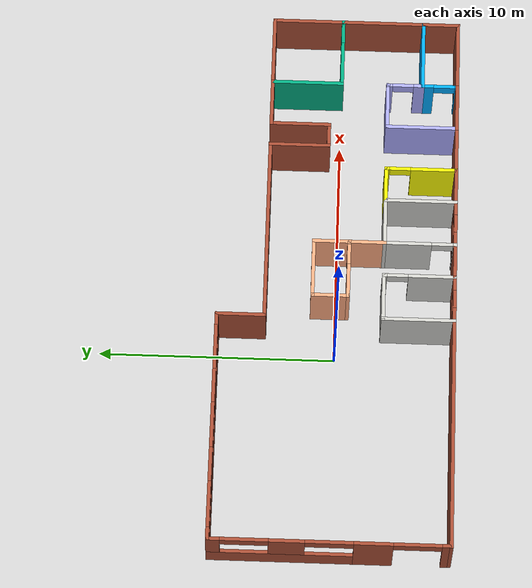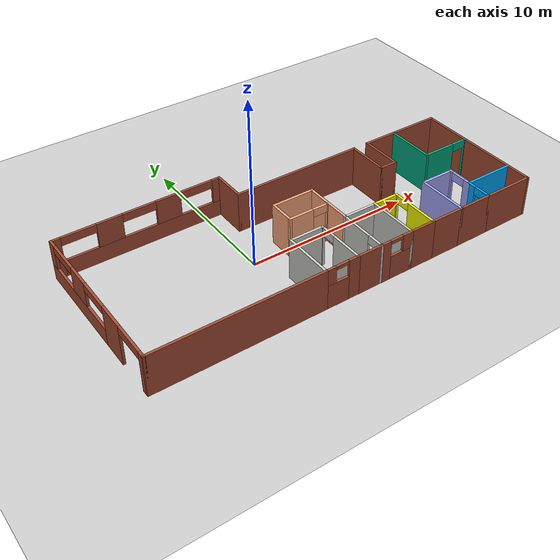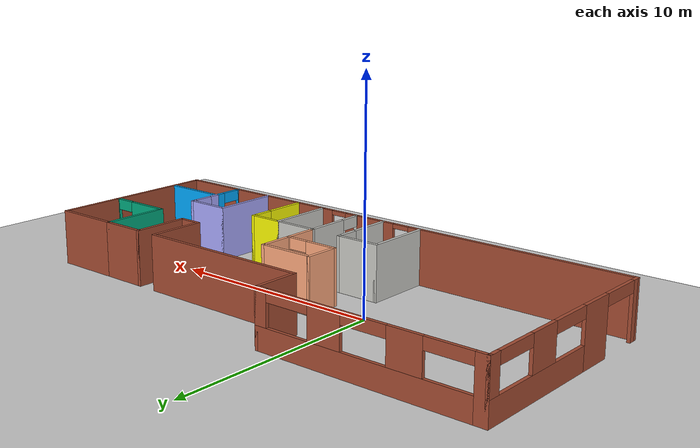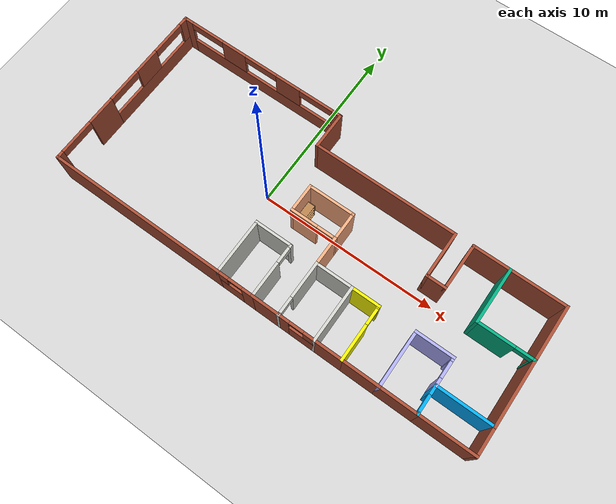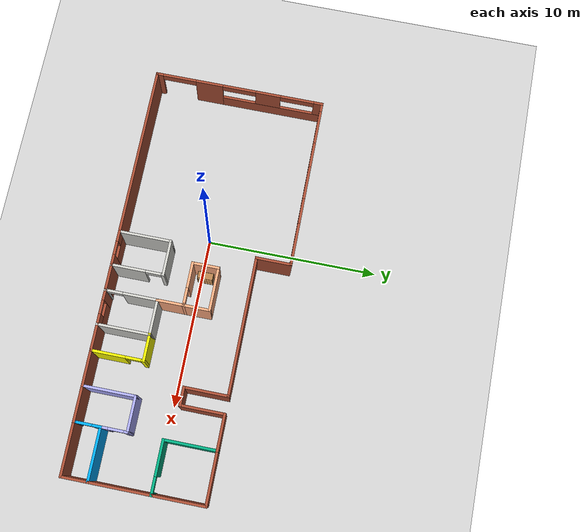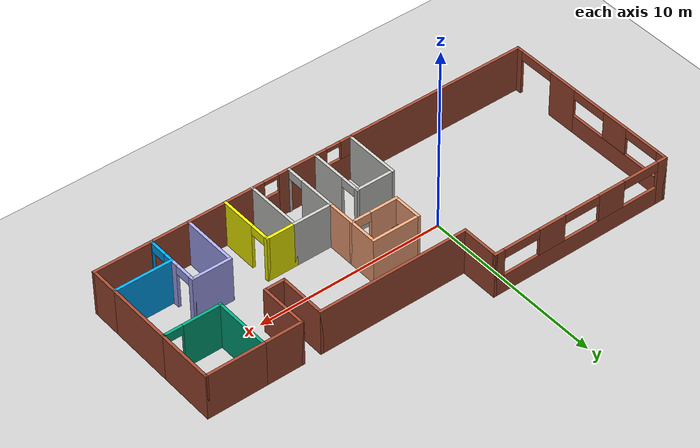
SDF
<sdf version="1.6">
 <world name="default">
  <model name="ground_plane">
   <static>1</static>
   <link name="link">
    <collision name="collision">
     <geometry><plane><normal>0 0 1</normal><size>100 100</size></plane></geometry>
     <surface><friction><ode><mu>100</mu><mu2>50</mu2></ode></friction></surface>
    </collision>
    <visual name="visual">
     <cast_shadows>0</cast_shadows>
     <geometry><plane><normal>0 0 1</normal><size>100 100</size></plane></geometry>
     <material>
      <script><uri>file://media/materials/scripts/gazebo.material</uri><name>Gazebo/Grey</name></script>
     </material>
    </visual>
   </link>
  </model>
  <model name="restaurant_renato">
   <pose>3 0 0 0 -0 0</pose>
   <link name="Wall_1">
    <pose>-12 0 0 0 -0 1.5708</pose>
    <visual name="Wall_1_Visual_0">
     <pose>-4.85276 0 1.25 0 -0 0</pose>
     <geometry><box><size>0.444476 0.15 2.5</size></box></geometry>
     <material>
      <script><uri>file://media/materials/scripts/gazebo.material</uri><name>Gazebo/Bricks</name></script>
      <ambient>0.333333 0.666667 1 1</ambient>
     </material>
     <meta><layer>0</layer></meta>
    </visual>
    <collision name="Wall_1_Collision_0">
     <geometry><box><size>0.444476 0.15 2.5</size></box></geometry>
     <pose>-4.85276 0 1.25 0 -0 0</pose>
    </collision>
    <visual name="Wall_1_Visual_1">
     <pose>-1.81526 0 1.25 0 -0 0</pose>
     <geometry><box><size>1.63052 0.15 2.5</size></box></geometry>
     <material>
      <script><uri>file://media/materials/scripts/gazebo.material</uri><name>Gazebo/Bricks</name></script>
      <ambient>0.333333 0.666667 1 1</ambient>
     </material>
     <meta><layer>0</layer></meta>
    </visual>
    <collision name="Wall_1_Collision_1">
     <geometry><box><size>1.63052 0.15 2.5</size></box></geometry>
     <pose>-1.81526 0 1.25 0 -0 0</pose>
    </collision>
    <visual name="Wall_1_Visual_2">
     <pose>2.0375 0 0.5 0 -0 0</pose>
     <geometry><box><size>6.075 0.15 1</size></box></geometry>
     <material>
      <script><uri>file://media/materials/scripts/gazebo.material</uri><name>Gazebo/Bricks</name></script>
      <ambient>0.333333 0.666667 1 1</ambient>
     </material>
     <meta><layer>0</layer></meta>
    </visual>
    <collision name="Wall_1_Collision_2">
     <geometry><box><size>6.075 0.15 1</size></box></geometry>
     <pose>2.0375 0 0.5 0 -0 0</pose>
    </collision>
    <visual name="Wall_1_Visual_3">
     <pose>1.75 0 1.75 0 -0 0</pose>
     <geometry><box><size>1.5 0.15 1.5</size></box></geometry>
     <material>
      <script><uri>file://media/materials/scripts/gazebo.material</uri><name>Gazebo/Bricks</name></script>
      <ambient>0.333333 0.666667 1 1</ambient>
     </material>
     <meta><layer>0</layer></meta>
    </visual>
    <collision name="Wall_1_Collision_3">
     <geometry><box><size>1.5 0.15 1.5</size></box></geometry>
     <pose>1.75 0 1.75 0 -0 0</pose>
    </collision>
    <visual name="Wall_1_Visual_4">
     <pose>4.7875 0 1.75 0 -0 0</pose>
     <geometry><box><size>0.575 0.15 1.5</size></box></geometry>
     <material>
      <script><uri>file://media/materials/scripts/gazebo.material</uri><name>Gazebo/Bricks</name></script>
      <ambient>0.333333 0.666667 1 1</ambient>
     </material>
     <meta><layer>0</layer></meta>
    </visual>
    <collision name="Wall_1_Collision_4">
     <geometry><box><size>0.575 0.15 1.5</size></box></geometry>
     <pose>4.7875 0 1.75 0 -0 0</pose>
    </collision>
    <visual name="Wall_1_Visual_5">
     <pose>-3.63052 0 2.25 0 -0 0</pose>
     <geometry><box><size>2 0.15 0.5</size></box></geometry>
     <material>
      <script><uri>file://media/materials/scripts/gazebo.material</uri><name>Gazebo/Bricks</name></script>
      <ambient>0.333333 0.666667 1 1</ambient>
     </material>
     <meta><layer>0</layer></meta>
    </visual>
    <collision name="Wall_1_Collision_5">
     <geometry><box><size>2 0.15 0.5</size></box></geometry>
     <pose>-3.63052 0 2.25 0 -0 0</pose>
    </collision>
    <visual name="Wall_1_Visual_6">
     <pose>0 0 2.25 0 -0 0</pose>
     <geometry><box><size>2 0.15 0.5</size></box></geometry>
     <material>
      <script><uri>file://media/materials/scripts/gazebo.material</uri><name>Gazebo/Bricks</name></script>
      <ambient>0.333333 0.666667 1 1</ambient>
     </material>
     <meta><layer>0</layer></meta>
    </visual>
    <collision name="Wall_1_Collision_6">
     <geometry><box><size>2 0.15 0.5</size></box></geometry>
     <pose>0 0 2.25 0 -0 0</pose>
    </collision>
    <visual name="Wall_1_Visual_7">
     <pose>3.5 0 2.25 0 -0 0</pose>
     <geometry><box><size>2 0.15 0.5</size></box></geometry>
     <material>
      <script><uri>file://media/materials/scripts/gazebo.material</uri><name>Gazebo/Bricks</name></script>
      <ambient>0.333333 0.666667 1 1</ambient>
     </material>
     <meta><layer>0</layer></meta>
    </visual>
    <collision name="Wall_1_Collision_7">
     <geometry><box><size>2 0.15 0.5</size></box></geometry>
     <pose>3.5 0 2.25 0 -0 0</pose>
    </collision>
   </link>
   <link name="Wall_2">
    <pose>-7 5 0 0 -0 0</pose>
    <visual name="Wall_2_Visual_0">
     <pose>-4.7875 0 1.25 0 -0 0</pose>
     <geometry><box><size>0.575 0.15 2.5</size></box></geometry>
     <material>
      <script><uri>file://media/materials/scripts/gazebo.material</uri><name>Gazebo/Bricks</name></script>
      <ambient>0.333333 0.666667 1 1</ambient>
     </material>
     <meta><layer>0</layer></meta>
    </visual>
    <collision name="Wall_2_Collision_0">
     <geometry><box><size>0.575 0.15 2.5</size></box></geometry>
     <pose>-4.7875 0 1.25 0 -0 0</pose>
    </collision>
    <visual name="Wall_2_Visual_1">
     <pose>0.2875 0 0.5 0 -0 0</pose>
     <geometry><box><size>9.575 0.15 1</size></box></geometry>
     <material>
      <script><uri>file://media/materials/scripts/gazebo.material</uri><name>Gazebo/Bricks</name></script>
      <ambient>0.333333 0.666667 1 1</ambient>
     </material>
     <meta><layer>0</layer></meta>
    </visual>
    <collision name="Wall_2_Collision_1">
     <geometry><box><size>9.575 0.15 1</size></box></geometry>
     <pose>0.2875 0 0.5 0 -0 0</pose>
    </collision>
    <visual name="Wall_2_Visual_2">
     <pose>-1.75 0 1.75 0 -0 0</pose>
     <geometry><box><size>1.5 0.15 1.5</size></box></geometry>
     <material>
      <script><uri>file://media/materials/scripts/gazebo.material</uri><name>Gazebo/Bricks</name></script>
      <ambient>0.333333 0.666667 1 1</ambient>
     </material>
     <meta><layer>0</layer></meta>
    </visual>
    <collision name="Wall_2_Collision_2">
     <geometry><box><size>1.5 0.15 1.5</size></box></geometry>
     <pose>-1.75 0 1.75 0 -0 0</pose>
    </collision>
    <visual name="Wall_2_Visual_3">
     <pose>1.75 0 1.75 0 -0 0</pose>
     <geometry><box><size>1.5 0.15 1.5</size></box></geometry>
     <material>
      <script><uri>file://media/materials/scripts/gazebo.material</uri><name>Gazebo/Bricks</name></script>
      <ambient>0.333333 0.666667 1 1</ambient>
     </material>
     <meta><layer>0</layer></meta>
    </visual>
    <collision name="Wall_2_Collision_3">
     <geometry><box><size>1.5 0.15 1.5</size></box></geometry>
     <pose>1.75 0 1.75 0 -0 0</pose>
    </collision>
    <visual name="Wall_2_Visual_4">
     <pose>4.7875 0 1.75 0 -0 0</pose>
     <geometry><box><size>0.575 0.15 1.5</size></box></geometry>
     <material>
      <script><uri>file://media/materials/scripts/gazebo.material</uri><name>Gazebo/Bricks</name></script>
      <ambient>0.333333 0.666667 1 1</ambient>
     </material>
     <meta><layer>0</layer></meta>
    </visual>
    <collision name="Wall_2_Collision_4">
     <geometry><box><size>0.575 0.15 1.5</size></box></geometry>
     <pose>4.7875 0 1.75 0 -0 0</pose>
    </collision>
    <visual name="Wall_2_Visual_5">
     <pose>-3.5 0 2.25 0 -0 0</pose>
     <geometry><box><size>2 0.15 0.5</size></box></geometry>
     <material>
      <script><uri>file://media/materials/scripts/gazebo.material</uri><name>Gazebo/Bricks</name></script>
      <ambient>0.333333 0.666667 1 1</ambient>
     </material>
     <meta><layer>0</layer></meta>
    </visual>
    <collision name="Wall_2_Collision_5">
     <geometry><box><size>2 0.15 0.5</size></box></geometry>
     <pose>-3.5 0 2.25 0 -0 0</pose>
    </collision>
    <visual name="Wall_2_Visual_6">
     <pose>0 0 2.25 0 -0 0</pose>
     <geometry><box><size>2 0.15 0.5</size></box></geometry>
     <material>
      <script><uri>file://media/materials/scripts/gazebo.material</uri><name>Gazebo/Bricks</name></script>
      <ambient>0.333333 0.666667 1 1</ambient>
     </material>
     <meta><layer>0</layer></meta>
    </visual>
    <collision name="Wall_2_Collision_6">
     <geometry><box><size>2 0.15 0.5</size></box></geometry>
     <pose>0 0 2.25 0 -0 0</pose>
    </collision>
    <visual name="Wall_2_Visual_7">
     <pose>3.5 0 2.25 0 -0 0</pose>
     <geometry><box><size>2 0.15 0.5</size></box></geometry>
     <material>
      <script><uri>file://media/materials/scripts/gazebo.material</uri><name>Gazebo/Bricks</name></script>
      <ambient>0.333333 0.666667 1 1</ambient>
     </material>
     <meta><layer>0</layer></meta>
    </visual>
    <collision name="Wall_2_Collision_7">
     <geometry><box><size>2 0.15 0.5</size></box></geometry>
     <pose>3.5 0 2.25 0 -0 0</pose>
    </collision>
   </link>
   <link name="Wall_24">
    <collision name="Wall_24_Collision">
     <geometry><box><size>3.15 0.15 2.5</size></box></geometry>
     <pose>0 0 1.25 0 -0 0</pose>
    </collision>
    <visual name="Wall_24_Visual">
     <pose>0 0 1.25 0 -0 0</pose>
     <geometry><box><size>3.15 0.15 2.5</size></box></geometry>
     <material>
      <script><uri>file://media/materials/scripts/gazebo.material</uri><name>Gazebo/CeilingTiled</name></script>
      <ambient>1 0 0 1</ambient>
     </material>
     <meta><layer>0</layer></meta>
    </visual>
    <pose>-2 -3.5 0 0 -0 1.5708</pose>
   </link>
   <link name="Wall_25">
    <collision name="Wall_25_Collision">
     <geometry><box><size>2.15 0.15 2.5</size></box></geometry>
     <pose>0 0 1.25 0 -0 0</pose>
    </collision>
    <visual name="Wall_25_Visual">
     <pose>0 0 1.25 0 -0 0</pose>
     <geometry><box><size>2.15 0.15 2.5</size></box></geometry>
     <material>
      <script><uri>file://media/materials/scripts/gazebo.material</uri><name>Gazebo/CeilingTiled</name></script>
      <ambient>1 0 0 1</ambient>
     </material>
     <meta><layer>0</layer></meta>
    </visual>
    <pose>-1 -2 0 0 -0 0</pose>
   </link>
   <link name="Wall_26">
    <pose>0 -3.5 0 0 0 -1.5708</pose>
    <visual name="Wall_26_Visual_0">
     <pose>-1.47325 0 1.25 0 -0 0</pose>
     <geometry><box><size>0.203506 0.15 2.5</size></box></geometry>
     <material>
      <script><uri>file://media/materials/scripts/gazebo.material</uri><name>Gazebo/CeilingTiled</name></script>
      <ambient>1 0 0 1</ambient>
     </material>
     <meta><layer>0</layer></meta>
    </visual>
    <collision name="Wall_26_Collision_0">
     <geometry><box><size>0.203506 0.15 2.5</size></box></geometry>
     <pose>-1.47325 0 1.25 0 -0 0</pose>
    </collision>
    <visual name="Wall_26_Visual_1">
     <pose>0.551753 0 1.25 0 -0 0</pose>
     <geometry><box><size>2.04649 0.15 2.5</size></box></geometry>
     <material>
      <script><uri>file://media/materials/scripts/gazebo.material</uri><name>Gazebo/CeilingTiled</name></script>
      <ambient>1 0 0 1</ambient>
     </material>
     <meta><layer>0</layer></meta>
    </visual>
    <collision name="Wall_26_Collision_1">
     <geometry><box><size>2.04649 0.15 2.5</size></box></geometry>
     <pose>0.551753 0 1.25 0 -0 0</pose>
    </collision>
    <visual name="Wall_26_Visual_2">
     <pose>-0.921494 0 2.25 0 -0 0</pose>
     <geometry><box><size>0.9 0.15 0.5</size></box></geometry>
     <material>
      <script><uri>file://media/materials/scripts/gazebo.material</uri><name>Gazebo/CeilingTiled</name></script>
      <ambient>1 0 0 1</ambient>
     </material>
     <meta><layer>0</layer></meta>
    </visual>
    <collision name="Wall_26_Collision_2">
     <geometry><box><size>0.9 0.15 0.5</size></box></geometry>
     <pose>-0.921494 0 2.25 0 -0 0</pose>
    </collision>
   </link>
   <link name="Wall_27">
    <pose>-1 -5 0 0 -0 3.14159</pose>
    <visual name="Wall_27_Visual_0">
     <pose>-0.7375 0 1.25 0 -0 0</pose>
     <geometry><box><size>0.675 0.15 2.5</size></box></geometry>
     <material>
      <script><uri>file://media/materials/scripts/gazebo.material</uri><name>Gazebo/Bricks</name></script>
      <ambient>0.333333 0.666667 1 1</ambient>
     </material>
     <meta><layer>0</layer></meta>
    </visual>
    <collision name="Wall_27_Collision_0">
     <geometry><box><size>0.675 0.15 2.5</size></box></geometry>
     <pose>-0.7375 0 1.25 0 -0 0</pose>
    </collision>
    <visual name="Wall_27_Visual_1">
     <pose>0.3375 0 0.75 0 -0 0</pose>
     <geometry><box><size>1.475 0.15 1.5</size></box></geometry>
     <material>
      <script><uri>file://media/materials/scripts/gazebo.material</uri><name>Gazebo/Bricks</name></script>
      <ambient>0.333333 0.666667 1 1</ambient>
     </material>
     <meta><layer>0</layer></meta>
    </visual>
    <collision name="Wall_27_Collision_1">
     <geometry><box><size>1.475 0.15 1.5</size></box></geometry>
     <pose>0.3375 0 0.75 0 -0 0</pose>
    </collision>
    <visual name="Wall_27_Visual_2">
     <pose>0.7375 0 2 0 -0 0</pose>
     <geometry><box><size>0.675 0.15 1</size></box></geometry>
     <material>
      <script><uri>file://media/materials/scripts/gazebo.material</uri><name>Gazebo/Bricks</name></script>
      <ambient>0.333333 0.666667 1 1</ambient>
     </material>
     <meta><layer>0</layer></meta>
    </visual>
    <collision name="Wall_27_Collision_2">
     <geometry><box><size>0.675 0.15 1</size></box></geometry>
     <pose>0.7375 0 2 0 -0 0</pose>
    </collision>
    <visual name="Wall_27_Visual_3">
     <pose>0 0 2.4 0 -0 0</pose>
     <geometry><box><size>0.8 0.15 0.2</size></box></geometry>
     <material>
      <script><uri>file://media/materials/scripts/gazebo.material</uri><name>Gazebo/Bricks</name></script>
      <ambient>0.333333 0.666667 1 1</ambient>
     </material>
     <meta><layer>0</layer></meta>
    </visual>
    <collision name="Wall_27_Collision_3">
     <geometry><box><size>0.8 0.15 0.2</size></box></geometry>
     <pose>0 0 2.4 0 -0 0</pose>
    </collision>
   </link>
   <link name="Wall_29">
    <collision name="Wall_29_Collision">
     <geometry><box><size>1.65 0.15 2.5</size></box></geometry>
     <pose>0 0 1.25 0 -0 0</pose>
    </collision>
    <visual name="Wall_29_Visual">
     <pose>0 0 1.25 0 -0 0</pose>
     <geometry><box><size>1.65 0.15 2.5</size></box></geometry>
     <material>
      <script><uri>file://media/materials/scripts/gazebo.material</uri><name>Gazebo/Bricks</name></script>
      <ambient>0.333333 0.666667 1 1</ambient>
     </material>
     <meta><layer>0</layer></meta>
    </visual>
    <pose>0.75 -5 0 0 -0 0</pose>
   </link>
   <link name="Wall_30">
    <pose>1.5 -3.5 0 0 -0 1.5708</pose>
    <visual name="Wall_30_Visual_0">
     <pose>-1.48476 0 1.25 0 -0 0</pose>
     <geometry><box><size>0.18049 0.15 2.5</size></box></geometry>
     <material>
      <script><uri>file://media/materials/scripts/gazebo.material</uri><name>Gazebo/CeilingTiled</name></script>
      <ambient>1 0 0.498039 1</ambient>
     </material>
     <meta><layer>0</layer></meta>
    </visual>
    <collision name="Wall_30_Collision_0">
     <geometry><box><size>0.18049 0.15 2.5</size></box></geometry>
     <pose>-1.48476 0 1.25 0 -0 0</pose>
    </collision>
    <visual name="Wall_30_Visual_1">
     <pose>0.540245 0 1.25 0 -0 0</pose>
     <geometry><box><size>2.06951 0.15 2.5</size></box></geometry>
     <material>
      <script><uri>file://media/materials/scripts/gazebo.material</uri><name>Gazebo/CeilingTiled</name></script>
      <ambient>1 0 0.498039 1</ambient>
     </material>
     <meta><layer>0</layer></meta>
    </visual>
    <collision name="Wall_30_Collision_1">
     <geometry><box><size>2.06951 0.15 2.5</size></box></geometry>
     <pose>0.540245 0 1.25 0 -0 0</pose>
    </collision>
    <visual name="Wall_30_Visual_2">
     <pose>-0.94451 0 2.25 0 -0 0</pose>
     <geometry><box><size>0.9 0.15 0.5</size></box></geometry>
     <material>
      <script><uri>file://media/materials/scripts/gazebo.material</uri><name>Gazebo/CeilingTiled</name></script>
      <ambient>1 0 0.498039 1</ambient>
     </material>
     <meta><layer>0</layer></meta>
    </visual>
    <collision name="Wall_30_Collision_2">
     <geometry><box><size>0.9 0.15 0.5</size></box></geometry>
     <pose>-0.94451 0 2.25 0 -0 0</pose>
    </collision>
   </link>
   <link name="Wall_31">
    <collision name="Wall_31_Collision">
     <geometry><box><size>2.15048 0.15 2.5</size></box></geometry>
     <pose>0 0 1.25 0 -0 0</pose>
    </collision>
    <visual name="Wall_31_Visual">
     <pose>0 0 1.25 0 -0 0</pose>
     <geometry><box><size>2.15048 0.15 2.5</size></box></geometry>
     <material>
      <script><uri>file://media/materials/scripts/gazebo.material</uri><name>Gazebo/CeilingTiled</name></script>
      <ambient>1 0 0.498039 1</ambient>
     </material>
     <meta><layer>0</layer></meta>
    </visual>
    <pose>2.5 -2 0 0 -0 0</pose>
   </link>
   <link name="Wall_32">
    <collision name="Wall_32_Collision">
     <geometry><box><size>3.15 0.15 2.5</size></box></geometry>
     <pose>0 0 1.25 0 -0 0</pose>
    </collision>
    <visual name="Wall_32_Visual">
     <pose>0 0 1.25 0 -0 0</pose>
     <geometry><box><size>3.15 0.15 2.5</size></box></geometry>
     <material>
      <script><uri>file://media/materials/scripts/gazebo.material</uri><name>Gazebo/CeilingTiled</name></script>
      <ambient>1 0 0.498039 1</ambient>
     </material>
     <meta><layer>0</layer></meta>
    </visual>
    <pose>3.5 -3.5 0 0 0 -1.5708</pose>
   </link>
   <link name="Wall_36">
    <collision name="Wall_36_Collision">
     <geometry><box><size>1.65 0.15 2.5</size></box></geometry>
     <pose>0 0 1.25 0 -0 0</pose>
    </collision>
    <visual name="Wall_36_Visual">
     <pose>0 0 1.25 0 -0 0</pose>
     <geometry><box><size>1.65 0.15 2.5</size></box></geometry>
     <material>
      <script><uri>file://media/materials/scripts/gazebo.material</uri><name>Gazebo/Grey</name></script>
      <ambient>1 0.666667 0.498039 1</ambient>
     </material>
     <meta><layer>0</layer></meta>
    </visual>
    <pose>1.5 -1.25 0 0 -0 1.5708</pose>
   </link>
   <link name="Wall_37">
    <pose>0.25 -0.5 0 0 -0 3.14159</pose>
    <visual name="Wall_37_Visual_0">
     <pose>-1.22433 0 1.25 0 -0 0</pose>
     <geometry><box><size>0.201342 0.15 2.5</size></box></geometry>
     <material>
      <script><uri>file://media/materials/scripts/gazebo.material</uri><name>Gazebo/Grey</name></script>
      <ambient>1 0.666667 0.498039 1</ambient>
     </material>
     <meta><layer>0</layer></meta>
    </visual>
    <collision name="Wall_37_Collision_0">
     <geometry><box><size>0.201342 0.15 2.5</size></box></geometry>
     <pose>-1.22433 0 1.25 0 -0 0</pose>
    </collision>
    <visual name="Wall_37_Visual_1">
     <pose>0.550671 0 1.25 0 -0 0</pose>
     <geometry><box><size>1.54866 0.15 2.5</size></box></geometry>
     <material>
      <script><uri>file://media/materials/scripts/gazebo.material</uri><name>Gazebo/Grey</name></script>
      <ambient>1 0.666667 0.498039 1</ambient>
     </material>
     <meta><layer>0</layer></meta>
    </visual>
    <collision name="Wall_37_Collision_1">
     <geometry><box><size>1.54866 0.15 2.5</size></box></geometry>
     <pose>0.550671 0 1.25 0 -0 0</pose>
    </collision>
    <visual name="Wall_37_Visual_2">
     <pose>-0.673658 0 2.25 0 -0 0</pose>
     <geometry><box><size>0.9 0.15 0.5</size></box></geometry>
     <material>
      <script><uri>file://media/materials/scripts/gazebo.material</uri><name>Gazebo/Grey</name></script>
      <ambient>1 0.666667 0.498039 1</ambient>
     </material>
     <meta><layer>0</layer></meta>
    </visual>
    <collision name="Wall_37_Collision_2">
     <geometry><box><size>0.9 0.15 0.5</size></box></geometry>
     <pose>-0.673658 0 2.25 0 -0 0</pose>
    </collision>
   </link>
   <link name="Wall_38">
    <collision name="Wall_38_Collision">
     <geometry><box><size>1.65 0.15 2.5</size></box></geometry>
     <pose>0 0 1.25 0 -0 0</pose>
    </collision>
    <visual name="Wall_38_Visual">
     <pose>0 0 1.25 0 -0 0</pose>
     <geometry><box><size>1.65 0.15 2.5</size></box></geometry>
     <material>
      <script><uri>file://media/materials/scripts/gazebo.material</uri><name>Gazebo/Grey</name></script>
      <ambient>1 0.666667 0.498039 1</ambient>
     </material>
     <meta><layer>0</layer></meta>
    </visual>
    <pose>-1 0.25 0 0 -0 1.5708</pose>
   </link>
   <link name="Wall_39">
    <collision name="Wall_39_Collision">
     <geometry><box><size>2.65 0.15 2.5</size></box></geometry>
     <pose>0 0 1.25 0 -0 0</pose>
    </collision>
    <visual name="Wall_39_Visual">
     <pose>0 0 1.25 0 -0 0</pose>
     <geometry><box><size>2.65 0.15 2.5</size></box></geometry>
     <material>
      <script><uri>file://media/materials/scripts/gazebo.material</uri><name>Gazebo/Grey</name></script>
      <ambient>1 0.666667 0.498039 1</ambient>
     </material>
     <meta><layer>0</layer></meta>
    </visual>
    <pose>0.25 1 0 0 -0 0</pose>
   </link>
   <link name="Wall_40">
    <collision name="Wall_40_Collision">
     <geometry><box><size>1.65 0.15 2.5</size></box></geometry>
     <pose>0 0 1.25 0 -0 0</pose>
    </collision>
    <visual name="Wall_40_Visual">
     <pose>0 0 1.25 0 -0 0</pose>
     <geometry><box><size>1.65 0.15 2.5</size></box></geometry>
     <material>
      <script><uri>file://media/materials/scripts/gazebo.material</uri><name>Gazebo/Grey</name></script>
      <ambient>1 0.666667 0.498039 1</ambient>
     </material>
     <meta><layer>0</layer></meta>
    </visual>
    <pose>1.5 0.25 0 0 0 -1.5708</pose>
   </link>
   <link name="Wall_44">
    <collision name="Wall_44_Collision">
     <geometry><box><size>1.65 0.15 2.5</size></box></geometry>
     <pose>0 0 1.25 0 -0 0</pose>
    </collision>
    <visual name="Wall_44_Visual">
     <pose>0 0 1.25 0 -0 0</pose>
     <geometry><box><size>1.65 0.15 2.5</size></box></geometry>
     <material>
      <script><uri>file://media/materials/scripts/gazebo.material</uri><name>Gazebo/Grey</name></script>
      <ambient>1 1 0 1</ambient>
     </material>
     <meta><layer>0</layer></meta>
    </visual>
    <pose>4.25 -2 0 0 -0 0</pose>
   </link>
   <link name="Wall_45">
    <pose>5 -3.5 0 0 0 -1.5708</pose>
    <visual name="Wall_45_Visual_0">
     <pose>-1.46507 0 1.25 0 -0 0</pose>
     <geometry><box><size>0.219867 0.15 2.5</size></box></geometry>
     <material>
      <script><uri>file://media/materials/scripts/gazebo.material</uri><name>Gazebo/Grey</name></script>
      <ambient>1 1 0 1</ambient>
     </material>
     <meta><layer>0</layer></meta>
    </visual>
    <collision name="Wall_45_Collision_0">
     <geometry><box><size>0.219867 0.15 2.5</size></box></geometry>
     <pose>-1.46507 0 1.25 0 -0 0</pose>
    </collision>
    <visual name="Wall_45_Visual_1">
     <pose>0.559934 0 1.25 0 -0 0</pose>
     <geometry><box><size>2.03013 0.15 2.5</size></box></geometry>
     <material>
      <script><uri>file://media/materials/scripts/gazebo.material</uri><name>Gazebo/Grey</name></script>
      <ambient>1 1 0 1</ambient>
     </material>
     <meta><layer>0</layer></meta>
    </visual>
    <collision name="Wall_45_Collision_1">
     <geometry><box><size>2.03013 0.15 2.5</size></box></geometry>
     <pose>0.559934 0 1.25 0 -0 0</pose>
    </collision>
    <visual name="Wall_45_Visual_2">
     <pose>-0.905133 0 2.25 0 -0 0</pose>
     <geometry><box><size>0.9 0.15 0.5</size></box></geometry>
     <material>
      <script><uri>file://media/materials/scripts/gazebo.material</uri><name>Gazebo/Grey</name></script>
      <ambient>1 1 0 1</ambient>
     </material>
     <meta><layer>0</layer></meta>
    </visual>
    <collision name="Wall_45_Collision_2">
     <geometry><box><size>0.9 0.15 0.5</size></box></geometry>
     <pose>-0.905133 0 2.25 0 -0 0</pose>
    </collision>
   </link>
   <link name="Wall_46">
    <collision name="Wall_46_Collision">
     <geometry><box><size>1.65 0.15 2.5</size></box></geometry>
     <pose>0 0 1.25 0 -0 0</pose>
    </collision>
    <visual name="Wall_46_Visual">
     <pose>0 0 1.25 0 -0 0</pose>
     <geometry><box><size>1.65 0.15 2.5</size></box></geometry>
     <material>
      <script><uri>file://media/materials/scripts/gazebo.material</uri><name>Gazebo/Bricks</name></script>
      <ambient>0.333333 0.666667 1 1</ambient>
     </material>
     <meta><layer>0</layer></meta>
    </visual>
    <pose>4.25 -5 0 0 -0 3.14159</pose>
   </link>
   <link name="Wall_48">
    <collision name="Wall_48_Collision">
     <geometry><box><size>2.15 0.15 2.5</size></box></geometry>
     <pose>0 0 1.25 0 -0 0</pose>
    </collision>
    <visual name="Wall_48_Visual">
     <pose>0 0 1.25 0 -0 0</pose>
     <geometry><box><size>2.15 0.15 2.5</size></box></geometry>
     <material>
      <script><uri>file://media/materials/scripts/gazebo.material</uri><name>Gazebo/Bricks</name></script>
      <ambient>0.333333 0.666667 1 1</ambient>
     </material>
     <meta><layer>0</layer></meta>
    </visual>
    <pose>6 -5 0 0 -0 0</pose>
   </link>
   <link name="Wall_53">
    <collision name="Wall_53_Collision">
     <geometry><box><size>2.65 0.15 2.5</size></box></geometry>
     <pose>0 0 1.25 0 -0 0</pose>
    </collision>
    <visual name="Wall_53_Visual">
     <pose>0 0 1.25 0 -0 0</pose>
     <geometry><box><size>2.65 0.15 2.5</size></box></geometry>
     <material>
      <script><uri>file://media/materials/scripts/gazebo.material</uri><name>Gazebo/Bricks</name></script>
      <ambient>0.333333 0.666667 1 1</ambient>
     </material>
     <meta><layer>0</layer></meta>
    </visual>
    <pose>6 1.75 0 0 0 -1.5708</pose>
   </link>
   <link name="Wall_55">
    <collision name="Wall_55_Collision">
     <geometry><box><size>1.15 0.15 2.5</size></box></geometry>
     <pose>0 0 1.25 0 -0 0</pose>
    </collision>
    <visual name="Wall_55_Visual">
     <pose>0 0 1.25 0 -0 0</pose>
     <geometry><box><size>1.15 0.15 2.5</size></box></geometry>
     <material>
      <script><uri>file://media/materials/scripts/gazebo.material</uri><name>Gazebo/Bricks</name></script>
      <ambient>0.333333 0.666667 1 1</ambient>
     </material>
     <meta><layer>0</layer></meta>
    </visual>
    <pose>6.5 0.5 0 0 -0 0</pose>
   </link>
   <link name="Wall_56">
    <collision name="Wall_56_Collision">
     <geometry><box><size>2.65 0.15 2.5</size></box></geometry>
     <pose>0 0 1.25 0 -0 0</pose>
    </collision>
    <visual name="Wall_56_Visual">
     <pose>0 0 1.25 0 -0 0</pose>
     <geometry><box><size>2.65 0.15 2.5</size></box></geometry>
     <material>
      <script><uri>file://media/materials/scripts/gazebo.material</uri><name>Gazebo/Bricks</name></script>
      <ambient>0.333333 0.666667 1 1</ambient>
     </material>
     <meta><layer>0</layer></meta>
    </visual>
    <pose>7 1.75 0 0 -0 1.5708</pose>
   </link>
   <link name="Wall_57">
    <collision name="Wall_57_Collision">
     <geometry><box><size>2.15 0.15 2.5</size></box></geometry>
     <pose>0 0 1.25 0 -0 0</pose>
    </collision>
    <visual name="Wall_57_Visual">
     <pose>0 0 1.25 0 -0 0</pose>
     <geometry><box><size>2.15 0.15 2.5</size></box></geometry>
     <material>
      <script><uri>file://media/materials/scripts/gazebo.material</uri><name>Gazebo/Bricks</name></script>
      <ambient>0.333333 0.666667 1 1</ambient>
     </material>
     <meta><layer>0</layer></meta>
    </visual>
    <pose>8 3 0 0 -0 0</pose>
   </link>
   <link name="Wall_6">
    <collision name="Wall_6_Collision">
     <geometry><box><size>10.15 0.15 2.5</size></box></geometry>
     <pose>0 0 1.25 0 -0 0</pose>
    </collision>
    <visual name="Wall_6_Visual">
     <pose>0 0 1.25 0 -0 0</pose>
     <geometry><box><size>10.15 0.15 2.5</size></box></geometry>
     <material>
      <script><uri>file://media/materials/scripts/gazebo.material</uri><name>Gazebo/Bricks</name></script>
      <ambient>0.333333 0.666667 1 1</ambient>
     </material>
     <meta><layer>0</layer></meta>
    </visual>
    <pose>-7 -5 0 0 -0 0</pose>
   </link>
   <link name="Wall_60">
    <collision name="Wall_60_Collision">
     <geometry><box><size>3.15 0.15 2.5</size></box></geometry>
     <pose>0 0 1.25 0 -0 0</pose>
    </collision>
    <visual name="Wall_60_Visual">
     <pose>0 0 1.25 0 -0 0</pose>
     <geometry><box><size>3.15 0.15 2.5</size></box></geometry>
     <material>
      <script><uri>file://media/materials/scripts/gazebo.material</uri><name>Gazebo/Grey</name></script>
      <ambient>0.666667 0.666667 1 1</ambient>
     </material>
     <meta><layer>0</layer></meta>
    </visual>
    <pose>7 -3.5 0 0 -0 1.5708</pose>
   </link>
   <link name="Wall_64">
    <pose>10.5 0 0 0 -0 3.14159</pose>
    <visual name="Wall_64_Visual_0">
     <pose>-1.48453 0 1.25 0 -0 0</pose>
     <geometry><box><size>0.180937 0.15 2.5</size></box></geometry>
     <material>
      <script><uri>file://media/materials/scripts/gazebo.material</uri><name>Gazebo/Grey</name></script>
      <ambient>0 0.666667 0.498039 1</ambient>
     </material>
     <meta><layer>0</layer></meta>
    </visual>
    <collision name="Wall_64_Collision_0">
     <geometry><box><size>0.180937 0.15 2.5</size></box></geometry>
     <pose>-1.48453 0 1.25 0 -0 0</pose>
    </collision>
    <visual name="Wall_64_Visual_1">
     <pose>0.540468 0 1.25 0 -0 0</pose>
     <geometry><box><size>2.06906 0.15 2.5</size></box></geometry>
     <material>
      <script><uri>file://media/materials/scripts/gazebo.material</uri><name>Gazebo/Grey</name></script>
      <ambient>0 0.666667 0.498039 1</ambient>
     </material>
     <meta><layer>0</layer></meta>
    </visual>
    <collision name="Wall_64_Collision_1">
     <geometry><box><size>2.06906 0.15 2.5</size></box></geometry>
     <pose>0.540468 0 1.25 0 -0 0</pose>
    </collision>
    <visual name="Wall_64_Visual_2">
     <pose>-0.944063 0 2.25 0 -0 0</pose>
     <geometry><box><size>0.9 0.15 0.5</size></box></geometry>
     <material>
      <script><uri>file://media/materials/scripts/gazebo.material</uri><name>Gazebo/Grey</name></script>
      <ambient>0 0.666667 0.498039 1</ambient>
     </material>
     <meta><layer>0</layer></meta>
    </visual>
    <collision name="Wall_64_Collision_2">
     <geometry><box><size>0.9 0.15 0.5</size></box></geometry>
     <pose>-0.944063 0 2.25 0 -0 0</pose>
    </collision>
   </link>
   <link name="Wall_66">
    <collision name="Wall_66_Collision">
     <geometry><box><size>3.15 0.15 2.5</size></box></geometry>
     <pose>0 0 1.25 0 -0 0</pose>
    </collision>
    <visual name="Wall_66_Visual">
     <pose>0 0 1.25 0 -0 0</pose>
     <geometry><box><size>3.15 0.15 2.5</size></box></geometry>
     <material>
      <script><uri>file://media/materials/scripts/gazebo.material</uri><name>Gazebo/Grey</name></script>
      <ambient>0 0.666667 0.498039 1</ambient>
     </material>
     <meta><layer>0</layer></meta>
    </visual>
    <pose>9 1.5 0 0 0 -1.5708</pose>
   </link>
   <link name="Wall_68">
    <collision name="Wall_68_Collision">
     <geometry><box><size>2.15 0.15 2.5</size></box></geometry>
     <pose>0 0 1.25 0 -0 0</pose>
    </collision>
    <visual name="Wall_68_Visual">
     <pose>0 0 1.25 0 -0 0</pose>
     <geometry><box><size>2.15 0.15 2.5</size></box></geometry>
     <material>
      <script><uri>file://media/materials/scripts/gazebo.material</uri><name>Gazebo/Grey</name></script>
      <ambient>0.666667 0.666667 1 1</ambient>
     </material>
     <meta><layer>0</layer></meta>
    </visual>
    <pose>8 -2 0 0 -0 0</pose>
   </link>
   <link name="Wall_71">
    <collision name="Wall_71_Collision">
     <geometry><box><size>2.15 0.15 2.5</size></box></geometry>
     <pose>0 0 1.25 0 -0 0</pose>
    </collision>
    <visual name="Wall_71_Visual">
     <pose>0 0 1.25 0 -0 0</pose>
     <geometry><box><size>2.15 0.15 2.5</size></box></geometry>
     <material>
      <script><uri>file://media/materials/scripts/gazebo.material</uri><name>Gazebo/Bricks</name></script>
      <ambient>0.333333 0.666667 1 1</ambient>
     </material>
     <meta><layer>0</layer></meta>
    </visual>
    <pose>8 -5 0 0 -0 0</pose>
   </link>
   <link name="Wall_72">
    <collision name="Wall_72_Collision">
     <geometry><box><size>0.15 0.15 2.5</size></box></geometry>
     <pose>0 0 1.25 0 -0 0</pose>
    </collision>
    <visual name="Wall_72_Visual">
     <pose>0 0 1.25 0 -0 0</pose>
     <geometry><box><size>0.15 0.15 2.5</size></box></geometry>
     <material>
      <script><uri>file://media/materials/scripts/gazebo.material</uri><name>Gazebo/Grey</name></script>
      <ambient>1 1 1 1</ambient>
     </material>
     <meta><layer>0</layer></meta>
    </visual>
    <pose>9 -5 0 0 -0 0</pose>
   </link>
   <link name="Wall_73">
    <collision name="Wall_73_Collision">
     <geometry><box><size>3.15 0.15 2.5</size></box></geometry>
     <pose>0 0 1.25 0 -0 0</pose>
    </collision>
    <visual name="Wall_73_Visual">
     <pose>0 0 1.25 0 -0 0</pose>
     <geometry><box><size>3.15 0.15 2.5</size></box></geometry>
     <material>
      <script><uri>file://media/materials/scripts/gazebo.material</uri><name>Gazebo/Bricks</name></script>
      <ambient>0.333333 0.666667 1 1</ambient>
     </material>
     <meta><layer>0</layer></meta>
    </visual>
    <pose>10.5 -5 0 0 -0 0</pose>
   </link>
   <link name="Wall_75">
    <pose>9 -2.75 0 0 0 -1.5708</pose>
    <visual name="Wall_75_Visual_0">
     <pose>-0.6875 0 1.25 0 -0 0</pose>
     <geometry><box><size>0.275 0.15 2.5</size></box></geometry>
     <material>
      <script><uri>file://media/materials/scripts/gazebo.material</uri><name>Gazebo/Grey</name></script>
      <ambient>0.666667 0.666667 1 1</ambient>
     </material>
     <meta><layer>0</layer></meta>
    </visual>
    <collision name="Wall_75_Collision_0">
     <geometry><box><size>0.275 0.15 2.5</size></box></geometry>
     <pose>-0.6875 0 1.25 0 -0 0</pose>
    </collision>
    <visual name="Wall_75_Visual_1">
     <pose>0.5875 0 1.25 0 -0 0</pose>
     <geometry><box><size>0.475 0.15 2.5</size></box></geometry>
     <material>
      <script><uri>file://media/materials/scripts/gazebo.material</uri><name>Gazebo/Grey</name></script>
      <ambient>0.666667 0.666667 1 1</ambient>
     </material>
     <meta><layer>0</layer></meta>
    </visual>
    <collision name="Wall_75_Collision_1">
     <geometry><box><size>0.475 0.15 2.5</size></box></geometry>
     <pose>0.5875 0 1.25 0 -0 0</pose>
    </collision>
    <visual name="Wall_75_Visual_2">
     <pose>-0.1 0 2.25 0 -0 0</pose>
     <geometry><box><size>0.9 0.15 0.5</size></box></geometry>
     <material>
      <script><uri>file://media/materials/scripts/gazebo.material</uri><name>Gazebo/Grey</name></script>
      <ambient>0.666667 0.666667 1 1</ambient>
     </material>
     <meta><layer>0</layer></meta>
    </visual>
    <collision name="Wall_75_Collision_2">
     <geometry><box><size>0.9 0.15 0.5</size></box></geometry>
     <pose>-0.1 0 2.25 0 -0 0</pose>
    </collision>
   </link>
   <link name="Wall_76">
    <pose>9 -4.25 0 0 0 -1.5708</pose>
    <visual name="Wall_76_Visual_0">
     <pose>-0.54736 0 1.25 0 -0 0</pose>
     <geometry><box><size>0.555281 0.15 2.5</size></box></geometry>
     <material>
      <script><uri>file://media/materials/scripts/gazebo.material</uri><name>Gazebo/Grey</name></script>
      <ambient>0 0.666667 1 1</ambient>
     </material>
     <meta><layer>0</layer></meta>
    </visual>
    <collision name="Wall_76_Collision_0">
     <geometry><box><size>0.555281 0.15 2.5</size></box></geometry>
     <pose>-0.54736 0 1.25 0 -0 0</pose>
    </collision>
    <visual name="Wall_76_Visual_1">
     <pose>0.72764 0 1.25 0 -0 0</pose>
     <geometry><box><size>0.194719 0.15 2.5</size></box></geometry>
     <material>
      <script><uri>file://media/materials/scripts/gazebo.material</uri><name>Gazebo/Grey</name></script>
      <ambient>0 0.666667 1 1</ambient>
     </material>
     <meta><layer>0</layer></meta>
    </visual>
    <collision name="Wall_76_Collision_1">
     <geometry><box><size>0.194719 0.15 2.5</size></box></geometry>
     <pose>0.72764 0 1.25 0 -0 0</pose>
    </collision>
    <visual name="Wall_76_Visual_2">
     <pose>0.180281 0 2.25 0 -0 0</pose>
     <geometry><box><size>0.9 0.15 0.5</size></box></geometry>
     <material>
      <script><uri>file://media/materials/scripts/gazebo.material</uri><name>Gazebo/Grey</name></script>
      <ambient>0 0.666667 1 1</ambient>
     </material>
     <meta><layer>0</layer></meta>
    </visual>
    <collision name="Wall_76_Collision_2">
     <geometry><box><size>0.9 0.15 0.5</size></box></geometry>
     <pose>0.180281 0 2.25 0 -0 0</pose>
    </collision>
   </link>
   <link name="Wall_78">
    <collision name="Wall_78_Collision">
     <geometry><box><size>3.15 0.15 2.5</size></box></geometry>
     <pose>0 0 1.25 0 -0 0</pose>
    </collision>
    <visual name="Wall_78_Visual">
     <pose>0 0 1.25 0 -0 0</pose>
     <geometry><box><size>3.15 0.15 2.5</size></box></geometry>
     <material>
      <script><uri>file://media/materials/scripts/gazebo.material</uri><name>Gazebo/Grey</name></script>
      <ambient>0 0.666667 1 1</ambient>
     </material>
     <meta><layer>0</layer></meta>
    </visual>
    <pose>10.5 -3.5 0 0 -0 0</pose>
   </link>
   <link name="Wall_80">
    <collision name="Wall_80_Collision">
     <geometry><box><size>1.65 0.15 2.5</size></box></geometry>
     <pose>0 0 1.25 0 -0 0</pose>
    </collision>
    <visual name="Wall_80_Visual">
     <pose>0 0 1.25 0 -0 0</pose>
     <geometry><box><size>1.65 0.15 2.5</size></box></geometry>
     <material>
      <script><uri>file://media/materials/scripts/gazebo.material</uri><name>Gazebo/Bricks</name></script>
      <ambient>0.333333 0.666667 1 1</ambient>
     </material>
     <meta><layer>0</layer></meta>
    </visual>
    <pose>12 -4.25 0 0 0 -1.5708</pose>
   </link>
   <link name="Wall_82">
    <collision name="Wall_82_Collision">
     <geometry><box><size>3.65 0.15 2.5</size></box></geometry>
     <pose>0 0 1.25 0 -0 0</pose>
    </collision>
    <visual name="Wall_82_Visual">
     <pose>0 0 1.25 0 -0 0</pose>
     <geometry><box><size>3.65 0.15 2.5</size></box></geometry>
     <material>
      <script><uri>file://media/materials/scripts/gazebo.material</uri><name>Gazebo/Bricks</name></script>
      <ambient>0.333333 0.666667 1 1</ambient>
     </material>
     <meta><layer>0</layer></meta>
    </visual>
    <pose>12 -1.75 0 0 0 -1.5708</pose>
   </link>
   <link name="Wall_86">
    <pose>2.5 -5 0 0 -0 0</pose>
    <visual name="Wall_86_Visual_0">
     <pose>-0.7375 0 1.25 0 -0 0</pose>
     <geometry><box><size>0.675 0.15 2.5</size></box></geometry>
     <material>
      <script><uri>file://media/materials/scripts/gazebo.material</uri><name>Gazebo/Bricks</name></script>
      <ambient>0.333333 0.666667 1 1</ambient>
     </material>
     <meta><layer>0</layer></meta>
    </visual>
    <collision name="Wall_86_Collision_0">
     <geometry><box><size>0.675 0.15 2.5</size></box></geometry>
     <pose>-0.7375 0 1.25 0 -0 0</pose>
    </collision>
    <visual name="Wall_86_Visual_1">
     <pose>0.3375 0 0.75 0 -0 0</pose>
     <geometry><box><size>1.475 0.15 1.5</size></box></geometry>
     <material>
      <script><uri>file://media/materials/scripts/gazebo.material</uri><name>Gazebo/Bricks</name></script>
      <ambient>0.333333 0.666667 1 1</ambient>
     </material>
     <meta><layer>0</layer></meta>
    </visual>
    <collision name="Wall_86_Collision_1">
     <geometry><box><size>1.475 0.15 1.5</size></box></geometry>
     <pose>0.3375 0 0.75 0 -0 0</pose>
    </collision>
    <visual name="Wall_86_Visual_2">
     <pose>0.7375 0 2 0 -0 0</pose>
     <geometry><box><size>0.675 0.15 1</size></box></geometry>
     <material>
      <script><uri>file://media/materials/scripts/gazebo.material</uri><name>Gazebo/Bricks</name></script>
      <ambient>0.333333 0.666667 1 1</ambient>
     </material>
     <meta><layer>0</layer></meta>
    </visual>
    <collision name="Wall_86_Collision_2">
     <geometry><box><size>0.675 0.15 1</size></box></geometry>
     <pose>0.7375 0 2 0 -0 0</pose>
    </collision>
    <visual name="Wall_86_Visual_3">
     <pose>0 0 2.4 0 -0 0</pose>
     <geometry><box><size>0.8 0.15 0.2</size></box></geometry>
     <material>
      <script><uri>file://media/materials/scripts/gazebo.material</uri><name>Gazebo/Bricks</name></script>
      <ambient>0.333333 0.666667 1 1</ambient>
     </material>
     <meta><layer>0</layer></meta>
    </visual>
    <collision name="Wall_86_Collision_3">
     <geometry><box><size>0.8 0.15 0.2</size></box></geometry>
     <pose>0 0 2.4 0 -0 0</pose>
    </collision>
   </link>
   <link name="Wall_88">
    <collision name="Wall_88_Collision">
     <geometry><box><size>2.15 0.15 2.5</size></box></geometry>
     <pose>0 0 1.25 0 -0 0</pose>
    </collision>
    <visual name="Wall_88_Visual">
     <pose>0 0 1.25 0 -0 0</pose>
     <geometry><box><size>2.15 0.15 2.5</size></box></geometry>
     <material>
      <script><uri>file://media/materials/scripts/gazebo.material</uri><name>Gazebo/Bricks</name></script>
      <ambient>0.333333 0.666667 1 1</ambient>
     </material>
     <meta><layer>0</layer></meta>
    </visual>
    <pose>-2 4 0 0 0 -1.5708</pose>
   </link>
   <link name="Wall_89">
    <collision name="Wall_89_Collision">
     <geometry><box><size>8.15 0.15 2.5</size></box></geometry>
     <pose>0 0 1.25 0 -0 0</pose>
    </collision>
    <visual name="Wall_89_Visual">
     <pose>0 0 1.25 0 -0 0</pose>
     <geometry><box><size>8.15 0.15 2.5</size></box></geometry>
     <material>
      <script><uri>file://media/materials/scripts/gazebo.material</uri><name>Gazebo/Bricks</name></script>
      <ambient>0.333333 0.666667 1 1</ambient>
     </material>
     <meta><layer>0</layer></meta>
    </visual>
    <pose>2 3 0 0 -0 0</pose>
   </link>
   <link name="Wall_91">
    <collision name="Wall_91_Collision">
     <geometry><box><size>3.15 0.15 2.5</size></box></geometry>
     <pose>0 0 1.25 0 -0 0</pose>
    </collision>
    <visual name="Wall_91_Visual">
     <pose>0 0 1.25 0 -0 0</pose>
     <geometry><box><size>3.15 0.15 2.5</size></box></geometry>
     <material>
      <script><uri>file://media/materials/scripts/gazebo.material</uri><name>Gazebo/Bricks</name></script>
      <ambient>0.333333 0.666667 1 1</ambient>
     </material>
     <meta><layer>0</layer></meta>
    </visual>
    <pose>10.5 3 0 0 -0 0</pose>
   </link>
   <link name="Wall_92">
    <collision name="Wall_92_Collision">
     <geometry><box><size>3.15 0.15 2.5</size></box></geometry>
     <pose>0 0 1.25 0 -0 0</pose>
    </collision>
    <visual name="Wall_92_Visual">
     <pose>0 0 1.25 0 -0 0</pose>
     <geometry><box><size>3.15 0.15 2.5</size></box></geometry>
     <material>
      <script><uri>file://media/materials/scripts/gazebo.material</uri><name>Gazebo/Bricks</name></script>
      <ambient>0.333333 0.666667 1 1</ambient>
     </material>
     <meta><layer>0</layer></meta>
    </visual>
    <pose>12 1.5 0 0 0 -1.5708</pose>
   </link>
   <static>1</static>
  </model>
  <model name="bookshelf_clone">
   <static>1</static>
   <link name="link">
    <inertial><mass>1</mass></inertial>
    <collision name="back">
     <pose>0 0.005 0.6 0 -0 0</pose>
     <geometry><box><size>0.9 0.01 1.2</size></box></geometry>
    </collision>
    <visual name="visual1">
     <pose>0 0.005 0.6 0 -0 0</pose>
     <geometry><box><size>0.9 0.01 1.2</size></box></geometry>
     <material>
      <script><uri>file://media/materials/scripts/gazebo.material</uri><name>Gazebo/Wood</name></script>
     </material>
    </visual>
    <collision name="left_side">
     <pose>0.45 -0.195 0.6 0 -0 0</pose>
     <geometry><box><size>0.02 0.4 1.2</size></box></geometry>
    </collision>
    <visual name="visual2">
     <pose>0.45 -0.195 0.6 0 -0 0</pose>
     <geometry><box><size>0.02 0.4 1.2</size></box></geometry>
     <material>
      <script><uri>file://media/materials/scripts/gazebo.material</uri><name>Gazebo/Wood</name></script>
     </material>
    </visual>
    <collision name="right_side">
     <pose>-0.45 -0.195 0.6 0 -0 0</pose>
     <geometry><box><size>0.02 0.4 1.2</size></box></geometry>
    </collision>
    <visual name="visual3">
     <pose>-0.45 -0.195 0.6 0 -0 0</pose>
     <geometry><box><size>0.02 0.4 1.2</size></box></geometry>
     <material>
      <script><uri>file://media/materials/scripts/gazebo.material</uri><name>Gazebo/Wood</name></script>
     </material>
    </visual>
    <collision name="bottom">
     <pose>0 -0.195 0.03 0 -0 0</pose>
     <geometry><box><size>0.88 0.4 0.06</size></box></geometry>
    </collision>
    <visual name="visual4">
     <pose>0 -0.195 0.03 0 -0 0</pose>
     <geometry><box><size>0.88 0.4 0.06</size></box></geometry>
     <material>
      <script><uri>file://media/materials/scripts/gazebo.material</uri><name>Gazebo/Wood</name></script>
     </material>
    </visual>
    <collision name="top">
     <pose>0 -0.195 1.19 0 -0 0</pose>
     <geometry><box><size>0.88 0.4 0.02</size></box></geometry>
    </collision>
    <visual name="visual5">
     <pose>0 -0.195 1.19 0 -0 0</pose>
     <geometry><box><size>0.88 0.4 0.02</size></box></geometry>
     <material>
      <script><uri>file://media/materials/scripts/gazebo.material</uri><name>Gazebo/Wood</name></script>
     </material>
    </visual>
    <collision name="low_shelf">
     <pose>0 -0.195 0.43 0 -0 0</pose>
     <geometry><box><size>0.88 0.4 0.02</size></box></geometry>
    </collision>
    <visual name="visual6">
     <pose>0 -0.195 0.43 0 -0 0</pose>
     <geometry><box><size>0.88 0.4 0.02</size></box></geometry>
     <material>
      <script><uri>file://media/materials/scripts/gazebo.material</uri><name>Gazebo/Wood</name></script>
     </material>
    </visual>
    <collision name="high_shelf">
     <pose>0 -0.195 0.8 0 -0 0</pose>
     <geometry><box><size>0.88 0.4 0.02</size></box></geometry>
    </collision>
    <visual name="visual7">
     <pose>0 -0.195 0.8 0 -0 0</pose>
     <geometry><box><size>0.88 0.4 0.02</size></box></geometry>
     <material>
      <script><uri>file://media/materials/scripts/gazebo.material</uri><name>Gazebo/Wood</name></script>
     </material>
    </visual>
   </link>
   <pose>2.11123 0.253386 0 0 -0 1.5707</pose>
  </model>
 </world>
</sdf>
